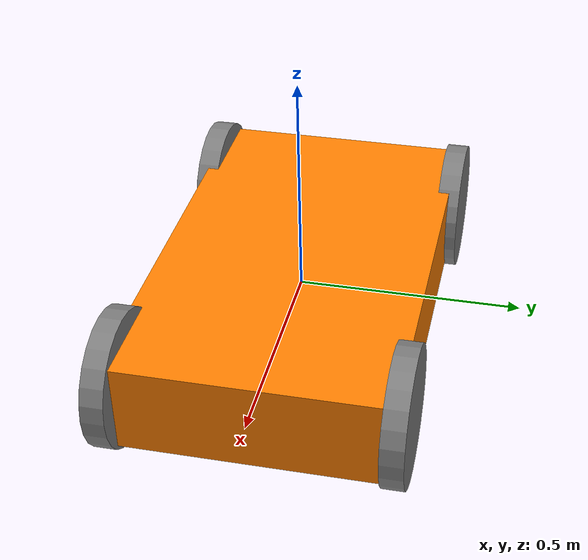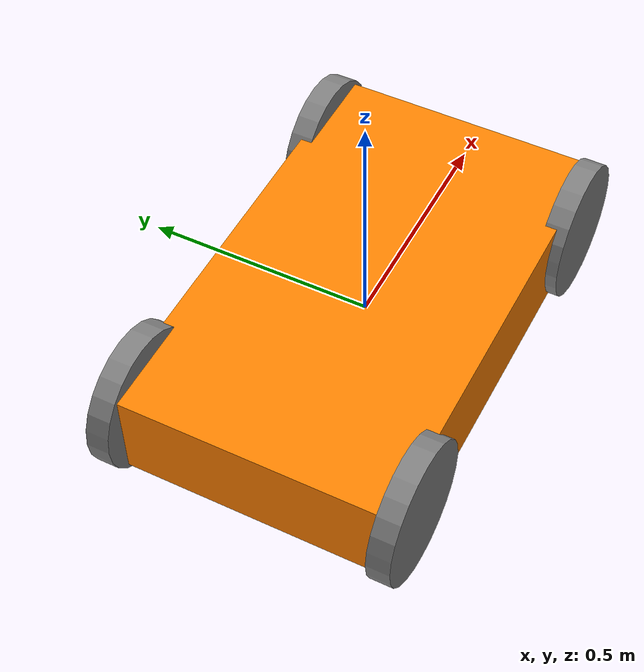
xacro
<?xml version="1.0"?>
<robot name="differential_drive_car" xmlns:xacro="http://ros.org/wiki/xacro">
    <xacro:property name="chassis_length" value="1.0"/>
    <xacro:property name="chassis_width" value="0.6"/>
    <xacro:property name="chassis_height" value="0.2"/>
    <xacro:property name="wheel_radius" value="0.15"/>
    <xacro:property name="wheel_width" value="0.05"/>
    <xacro:property name="wheelbase" value="0.8"/>
    <xacro:property name="track_width" value="0.6"/>

    <material name="orange">
        <color rgba="1.0 0.5 0.0 1.0"/>
    </material>

    <material name="gray">
        <color rgba="0.5 0.5 0.5 1.0"/>
    </material>

    <!-- Dummy Base Link -->
    <link name="base_link">
    </link>

    <joint name="base_to_chassis" type="fixed">
        <parent link="base_link"/>
        <child link="chassis"/>
        <origin xyz="0 0 0" rpy="0 0 0"/>
    </joint>

    <!-- Chassis -->
    <link name="chassis">
        <visual>
            <geometry>
                <box size="${chassis_length} ${chassis_width} ${chassis_height}"/>
            </geometry>
            <material name="orange"/>
        </visual>
        <collision>
            <geometry>
                <box size="${chassis_length} ${chassis_width} ${chassis_height}"/>
            </geometry>
        </collision>
        <inertial>
            <mass value="10.0"/>
            <origin xyz="0 0 0" rpy="0 0 0"/>
            <inertia ixx="1.0" iyy="1.0" izz="1.0" ixy="0.0" ixz="0.0" iyz="0.0"/>
        </inertial>
    </link>

    <!-- Wheels -->
    <xacro:macro name="wheel" params="name x y z reflect type">
        <link name="${name}">
            <visual>
                <geometry>
                    <cylinder radius="${wheel_radius}" length="${wheel_width}"/>
                </geometry>
                <material name="gray"/>
            </visual>

            <collision>
                <geometry>
                    <cylinder radius="${wheel_radius}" length="${wheel_width}"/>
                </geometry>
            </collision>
            <inertial>
                <mass value="1.0"/>
                <origin xyz="0 0 0" rpy="0 0 0"/>
                <inertia ixx="0.01" iyy="0.01" izz="0.01" ixy="0.0" ixz="0.0" iyz="0.0"/>
            </inertial>
        </link>
        <joint name="${name}_joint" type="continuous">
            <parent link="chassis"/>
            <child link="${name}"/>
            <origin xyz="${x} ${y} ${z}" rpy="${(pi/2)*reflect} 0 0"/>
            <axis xyz="0 0 1"/>
            <dynamics damping="0.1" friction="0.1"/>
            <limit lower="0" upper="0" effort="10" velocity="10"/>
        </joint>
    </xacro:macro>

    <!-- Front Left Wheel -->
    <xacro:wheel name="front_left_wheel" type="continuous" x="${wheelbase / 2}" y="${track_width / 2}" z="0" reflect="-1.0"/>

    <!-- Front Right Wheel -->
    <xacro:wheel name="front_right_wheel" type="continuous" x="${wheelbase / 2}" y="-${track_width / 2}" z="0" reflect="-1.0"/>

    <!-- Rear Left Wheel -->
    <xacro:wheel name="rear_left_wheel" type="fixed" x="-${wheelbase / 2}" y="${track_width / 2}" z="0" reflect="-1.0"/>

    <!-- Rear Right Wheel -->
    <xacro:wheel name="rear_right_wheel" type="fixed" x="-${wheelbase / 2}" y="-${track_width / 2}" z="0" reflect="-1.0"/>

    <!-- Gazebo Plugins -->
    <gazebo>
        <plugin name="diff_drive_controller" filename="libgazebo_ros_diff_drive.so">
            <ros>
                <namespace>/differential_drive_car</namespace>
                <remapping>cmd_vel:=/cmd_vel</remapping>
            </ros>
            <left_joint>front_left_wheel_joint</left_joint>
            <right_joint>front_right_wheel_joint</right_joint>
            <wheel_separation>${track_width}</wheel_separation>
            <wheel_diameter>${wheel_radius*2}</wheel_diameter>
            <publish_wheel_tf>true</publish_wheel_tf>
            <publish_wheel_joint_state>true</publish_wheel_joint_state>
            <odom_topic>/odom</odom_topic>
            <odometry_frame>odom</odometry_frame>
            <publish_odom>true</publish_odom>
            <publish_odom_tf>true</publish_odom_tf>
            <robot_base_frame>chassis</robot_base_frame>
        </plugin>

        <!-- IMU Sensor -->
        <plugin name="imu_sensor" filename="libgazebo_ros_imu.so">
            <ros>
                <namespace>/differential_drive_car</namespace>
                <remapping>imu:=/imu_data</remapping>
            </ros>
            <link_name>chassis</link_name>
            <update_rate>50</update_rate>
        </plugin>
    </gazebo>

</robot>
